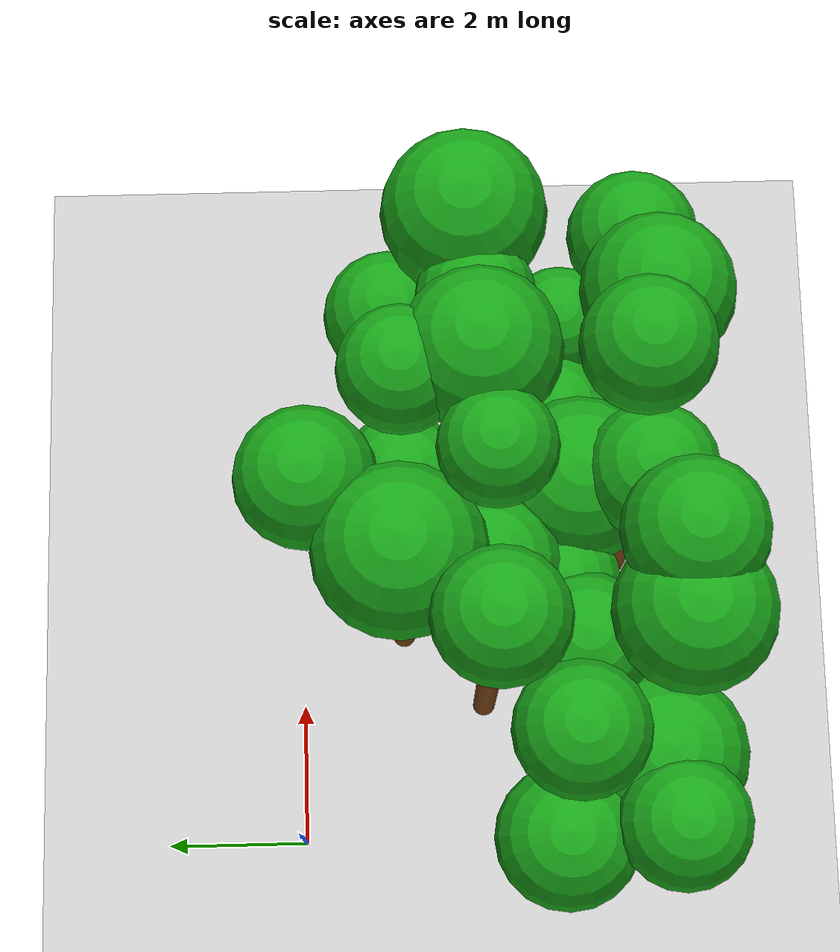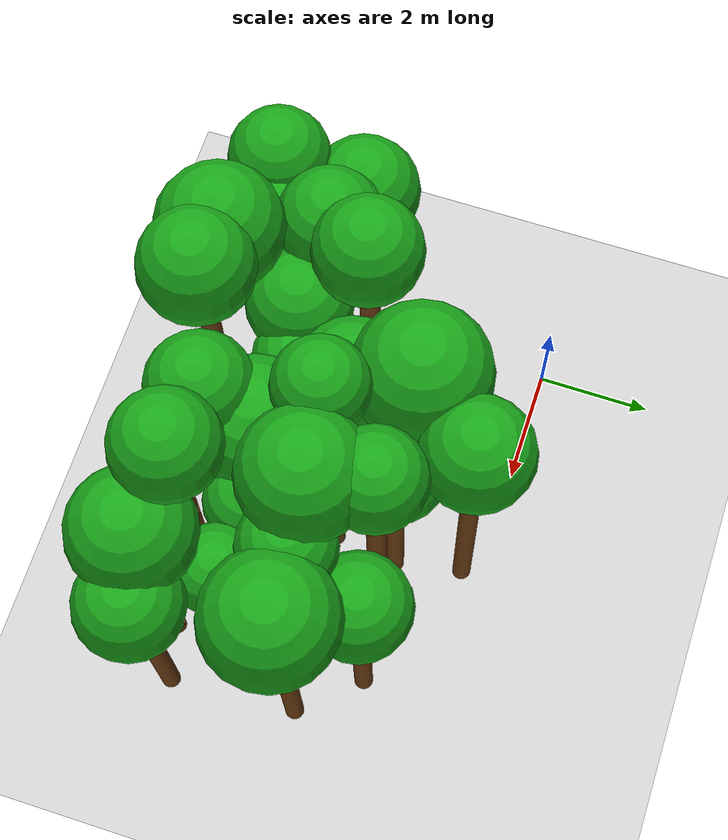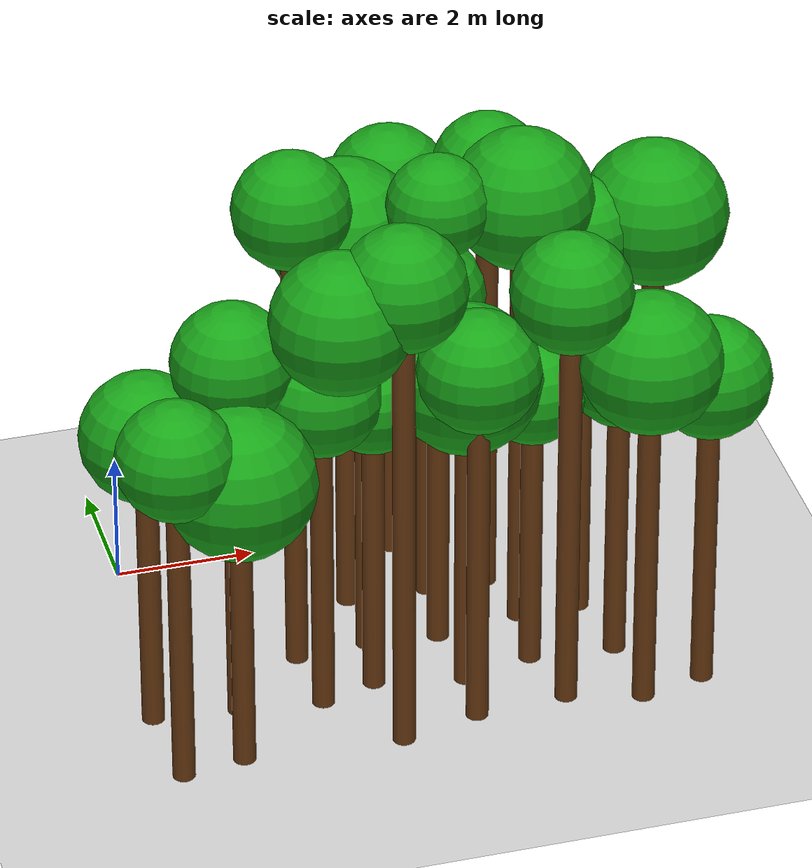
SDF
<sdf version="1.6">
 <world name="forest_world">
  <include><uri>model://sun</uri></include>
  <include><uri>model://ground_plane</uri></include>
  <model name="tree_1500_trunk">
   <static>true</static>
   <pose>-0.22 -4.87 2.38 0 0 0</pose>
   <link name="link">
    <collision name="collision">
     <geometry><cylinder><radius>0.16</radius><length>4.76</length></cylinder></geometry>
    </collision>
    <visual name="visual">
     <geometry><cylinder><radius>0.16</radius><length>4.76</length></cylinder></geometry>
     <material><ambient>0.35 0.20 0.05 1</ambient><diffuse>0.45 0.25 0.08 1</diffuse></material>
    </visual>
   </link>
  </model>
  <model name="tree_1500_leaf">
   <static>true</static>
   <pose>-0.22 -4.87 5.27 0 0 0</pose>
   <link name="link">
    <collision name="collision"><geometry><sphere><radius>0.84</radius></sphere></geometry></collision>
    <visual name="visual">
     <geometry><sphere><radius>0.84</radius></sphere></geometry>
     <material><ambient>0.05 0.45 0.05 1</ambient><diffuse>0.10 0.65 0.10 1</diffuse></material>
    </visual>
   </link>
  </model>
  <model name="tree_1501_trunk">
   <static>true</static>
   <pose>-0.32 -3.48 2.10 0 0 0</pose>
   <link name="link">
    <collision name="collision">
     <geometry><cylinder><radius>0.16</radius><length>4.21</length></cylinder></geometry>
    </collision>
    <visual name="visual">
     <geometry><cylinder><radius>0.16</radius><length>4.21</length></cylinder></geometry>
     <material><ambient>0.35 0.20 0.05 1</ambient><diffuse>0.45 0.25 0.08 1</diffuse></material>
    </visual>
   </link>
  </model>
  <model name="tree_1501_leaf">
   <static>true</static>
   <pose>-0.32 -3.48 4.76 0 0 0</pose>
   <link name="link">
    <collision name="collision"><geometry><sphere><radius>0.92</radius></sphere></geometry></collision>
    <visual name="visual">
     <geometry><sphere><radius>0.92</radius></sphere></geometry>
     <material><ambient>0.05 0.45 0.05 1</ambient><diffuse>0.10 0.65 0.10 1</diffuse></material>
    </visual>
   </link>
  </model>
  <model name="tree_1549_trunk">
   <static>true</static>
   <pose>0.68 -4.72 2.00 0 0 0</pose>
   <link name="link">
    <collision name="collision">
     <geometry><cylinder><radius>0.16</radius><length>4.01</length></cylinder></geometry>
    </collision>
    <visual name="visual">
     <geometry><cylinder><radius>0.16</radius><length>4.01</length></cylinder></geometry>
     <material><ambient>0.35 0.20 0.05 1</ambient><diffuse>0.45 0.25 0.08 1</diffuse></material>
    </visual>
   </link>
  </model>
  <model name="tree_1549_leaf">
   <static>true</static>
   <pose>0.68 -4.72 4.65 0 0 0</pose>
   <link name="link">
    <collision name="collision"><geometry><sphere><radius>1.08</radius></sphere></geometry></collision>
    <visual name="visual">
     <geometry><sphere><radius>1.08</radius></sphere></geometry>
     <material><ambient>0.05 0.45 0.05 1</ambient><diffuse>0.10 0.65 0.10 1</diffuse></material>
    </visual>
   </link>
  </model>
  <model name="tree_1550_trunk">
   <static>true</static>
   <pose>0.88 -3.62 2.66 0 0 0</pose>
   <link name="link">
    <collision name="collision">
     <geometry><cylinder><radius>0.16</radius><length>5.31</length></cylinder></geometry>
    </collision>
    <visual name="visual">
     <geometry><cylinder><radius>0.16</radius><length>5.31</length></cylinder></geometry>
     <material><ambient>0.35 0.20 0.05 1</ambient><diffuse>0.45 0.25 0.08 1</diffuse></material>
    </visual>
   </link>
  </model>
  <model name="tree_1550_leaf">
   <static>true</static>
   <pose>0.88 -3.62 5.83 0 0 0</pose>
   <link name="link">
    <collision name="collision"><geometry><sphere><radius>0.86</radius></sphere></geometry></collision>
    <visual name="visual">
     <geometry><sphere><radius>0.86</radius></sphere></geometry>
     <material><ambient>0.05 0.45 0.05 1</ambient><diffuse>0.10 0.65 0.10 1</diffuse></material>
    </visual>
   </link>
  </model>
  <model name="tree_1599_leaf">
   <static>true</static>
   <pose>2.07 -4.88 7.07 0 0 0</pose>
   <link name="link">
    <collision name="collision"><geometry><sphere><radius>0.98</radius></sphere></geometry></collision>
    <visual name="visual">
     <geometry><sphere><radius>0.98</radius></sphere></geometry>
     <material><ambient>0.05 0.45 0.05 1</ambient><diffuse>0.10 0.65 0.10 1</diffuse></material>
    </visual>
   </link>
  </model>
  <model name="tree_1600_trunk">
   <static>true</static>
   <pose>2.07 -3.75 2.33 0 0 0</pose>
   <link name="link">
    <collision name="collision">
     <geometry><cylinder><radius>0.16</radius><length>4.66</length></cylinder></geometry>
    </collision>
    <visual name="visual">
     <geometry><cylinder><radius>0.16</radius><length>4.66</length></cylinder></geometry>
     <material><ambient>0.35 0.20 0.05 1</ambient><diffuse>0.45 0.25 0.08 1</diffuse></material>
    </visual>
   </link>
  </model>
  <model name="tree_1600_leaf">
   <static>true</static>
   <pose>2.07 -3.75 5.18 0 0 0</pose>
   <link name="link">
    <collision name="collision"><geometry><sphere><radius>0.86</radius></sphere></geometry></collision>
    <visual name="visual">
     <geometry><sphere><radius>0.86</radius></sphere></geometry>
     <material><ambient>0.05 0.45 0.05 1</ambient><diffuse>0.10 0.65 0.10 1</diffuse></material>
    </visual>
   </link>
  </model>
  <model name="tree_1601_trunk">
   <static>true</static>
   <pose>1.98 -2.63 3.49 0 0 0</pose>
   <link name="link">
    <collision name="collision">
     <geometry><cylinder><radius>0.16</radius><length>6.99</length></cylinder></geometry>
    </collision>
    <visual name="visual">
     <geometry><cylinder><radius>0.16</radius><length>6.99</length></cylinder></geometry>
     <material><ambient>0.35 0.20 0.05 1</ambient><diffuse>0.45 0.25 0.08 1</diffuse></material>
    </visual>
   </link>
  </model>
  <model name="tree_1601_leaf">
   <static>true</static>
   <pose>1.98 -2.63 7.48 0 0 0</pose>
   <link name="link">
    <collision name="collision"><geometry><sphere><radius>0.83</radius></sphere></geometry></collision>
    <visual name="visual">
     <geometry><sphere><radius>0.83</radius></sphere></geometry>
     <material><ambient>0.05 0.45 0.05 1</ambient><diffuse>0.10 0.65 0.10 1</diffuse></material>
    </visual>
   </link>
  </model>
  <model name="tree_1650_trunk">
   <static>true</static>
   <pose>2.93 -4.88 3.46 0 0 0</pose>
   <link name="link">
    <collision name="collision">
     <geometry><cylinder><radius>0.16</radius><length>6.93</length></cylinder></geometry>
    </collision>
    <visual name="visual">
     <geometry><cylinder><radius>0.16</radius><length>6.93</length></cylinder></geometry>
     <material><ambient>0.35 0.20 0.05 1</ambient><diffuse>0.45 0.25 0.08 1</diffuse></material>
    </visual>
   </link>
  </model>
  <model name="tree_1650_leaf">
   <static>true</static>
   <pose>2.93 -4.88 7.46 0 0 0</pose>
   <link name="link">
    <collision name="collision"><geometry><sphere><radius>0.88</radius></sphere></geometry></collision>
    <visual name="visual">
     <geometry><sphere><radius>0.88</radius></sphere></geometry>
     <material><ambient>0.05 0.45 0.05 1</ambient><diffuse>0.10 0.65 0.10 1</diffuse></material>
    </visual>
   </link>
  </model>
  <model name="tree_1651_trunk">
   <static>true</static>
   <pose>2.87 -3.50 2.18 0 0 0</pose>
   <link name="link">
    <collision name="collision">
     <geometry><cylinder><radius>0.16</radius><length>4.36</length></cylinder></geometry>
    </collision>
    <visual name="visual">
     <geometry><cylinder><radius>0.16</radius><length>4.36</length></cylinder></geometry>
     <material><ambient>0.35 0.20 0.05 1</ambient><diffuse>0.45 0.25 0.08 1</diffuse></material>
    </visual>
   </link>
  </model>
  <model name="tree_1651_leaf">
   <static>true</static>
   <pose>2.87 -3.50 4.82 0 0 0</pose>
   <link name="link">
    <collision name="collision"><geometry><sphere><radius>0.77</radius></sphere></geometry></collision>
    <visual name="visual">
     <geometry><sphere><radius>0.77</radius></sphere></geometry>
     <material><ambient>0.05 0.45 0.05 1</ambient><diffuse>0.10 0.65 0.10 1</diffuse></material>
    </visual>
   </link>
  </model>
  <model name="tree_1652_trunk">
   <static>true</static>
   <pose>3.02 -2.57 2.35 0 0 0</pose>
   <link name="link">
    <collision name="collision">
     <geometry><cylinder><radius>0.16</radius><length>4.70</length></cylinder></geometry>
    </collision>
    <visual name="visual">
     <geometry><cylinder><radius>0.16</radius><length>4.70</length></cylinder></geometry>
     <material><ambient>0.35 0.20 0.05 1</ambient><diffuse>0.45 0.25 0.08 1</diffuse></material>
    </visual>
   </link>
  </model>
  <model name="tree_1652_leaf">
   <static>true</static>
   <pose>3.02 -2.57 5.26 0 0 0</pose>
   <link name="link">
    <collision name="collision"><geometry><sphere><radius>0.93</radius></sphere></geometry></collision>
    <visual name="visual">
     <geometry><sphere><radius>0.93</radius></sphere></geometry>
     <material><ambient>0.05 0.45 0.05 1</ambient><diffuse>0.10 0.65 0.10 1</diffuse></material>
    </visual>
   </link>
  </model>
  <model name="tree_1653_trunk">
   <static>true</static>
   <pose>3.03 -1.48 2.78 0 0 0</pose>
   <link name="link">
    <collision name="collision">
     <geometry><cylinder><radius>0.16</radius><length>5.56</length></cylinder></geometry>
    </collision>
    <visual name="visual">
     <geometry><cylinder><radius>0.16</radius><length>5.56</length></cylinder></geometry>
     <material><ambient>0.35 0.20 0.05 1</ambient><diffuse>0.45 0.25 0.08 1</diffuse></material>
    </visual>
   </link>
  </model>
  <model name="tree_1653_leaf">
   <static>true</static>
   <pose>3.03 -1.48 6.21 0 0 0</pose>
   <link name="link">
    <collision name="collision"><geometry><sphere><radius>1.09</radius></sphere></geometry></collision>
    <visual name="visual">
     <geometry><sphere><radius>1.09</radius></sphere></geometry>
     <material><ambient>0.05 0.45 0.05 1</ambient><diffuse>0.10 0.65 0.10 1</diffuse></material>
    </visual>
   </link>
  </model>
  <model name="tree_1705_trunk">
   <static>true</static>
   <pose>4.06 -4.61 2.63 0 0 0</pose>
   <link name="link">
    <collision name="collision">
     <geometry><cylinder><radius>0.16</radius><length>5.26</length></cylinder></geometry>
    </collision>
    <visual name="visual">
     <geometry><cylinder><radius>0.16</radius><length>5.26</length></cylinder></geometry>
     <material><ambient>0.35 0.20 0.05 1</ambient><diffuse>0.45 0.25 0.08 1</diffuse></material>
    </visual>
   </link>
  </model>
  <model name="tree_1705_leaf">
   <static>true</static>
   <pose>4.06 -4.61 5.77 0 0 0</pose>
   <link name="link">
    <collision name="collision"><geometry><sphere><radius>0.86</radius></sphere></geometry></collision>
    <visual name="visual">
     <geometry><sphere><radius>0.86</radius></sphere></geometry>
     <material><ambient>0.05 0.45 0.05 1</ambient><diffuse>0.10 0.65 0.10 1</diffuse></material>
    </visual>
   </link>
  </model>
  <model name="tree_1706_trunk">
   <static>true</static>
   <pose>4.13 -3.76 2.23 0 0 0</pose>
   <link name="link">
    <collision name="collision">
     <geometry><cylinder><radius>0.16</radius><length>4.45</length></cylinder></geometry>
    </collision>
    <visual name="visual">
     <geometry><cylinder><radius>0.16</radius><length>4.45</length></cylinder></geometry>
     <material><ambient>0.35 0.20 0.05 1</ambient><diffuse>0.45 0.25 0.08 1</diffuse></material>
    </visual>
   </link>
  </model>
  <model name="tree_1706_leaf">
   <static>true</static>
   <pose>4.13 -3.76 5.09 0 0 0</pose>
   <link name="link">
    <collision name="collision"><geometry><sphere><radius>1.06</radius></sphere></geometry></collision>
    <visual name="visual">
     <geometry><sphere><radius>1.06</radius></sphere></geometry>
     <material><ambient>0.05 0.45 0.05 1</ambient><diffuse>0.10 0.65 0.10 1</diffuse></material>
    </visual>
   </link>
  </model>
  <model name="tree_1707_trunk">
   <static>true</static>
   <pose>4.04 -2.66 3.39 0 0 0</pose>
   <link name="link">
    <collision name="collision">
     <geometry><cylinder><radius>0.16</radius><length>6.78</length></cylinder></geometry>
    </collision>
    <visual name="visual">
     <geometry><cylinder><radius>0.16</radius><length>6.78</length></cylinder></geometry>
     <material><ambient>0.35 0.20 0.05 1</ambient><diffuse>0.45 0.25 0.08 1</diffuse></material>
    </visual>
   </link>
  </model>
  <model name="tree_1707_leaf">
   <static>true</static>
   <pose>4.04 -2.66 7.22 0 0 0</pose>
   <link name="link">
    <collision name="collision"><geometry><sphere><radius>0.73</radius></sphere></geometry></collision>
    <visual name="visual">
     <geometry><sphere><radius>0.73</radius></sphere></geometry>
     <material><ambient>0.05 0.45 0.05 1</ambient><diffuse>0.10 0.65 0.10 1</diffuse></material>
    </visual>
   </link>
  </model>
  <model name="tree_1708_trunk">
   <static>true</static>
   <pose>4.19 -1.52 2.28 0 0 0</pose>
   <link name="link">
    <collision name="collision">
     <geometry><cylinder><radius>0.16</radius><length>4.56</length></cylinder></geometry>
    </collision>
    <visual name="visual">
     <geometry><cylinder><radius>0.16</radius><length>4.56</length></cylinder></geometry>
     <material><ambient>0.35 0.20 0.05 1</ambient><diffuse>0.45 0.25 0.08 1</diffuse></material>
    </visual>
   </link>
  </model>
  <model name="tree_1708_leaf">
   <static>true</static>
   <pose>4.19 -1.52 5.06 0 0 0</pose>
   <link name="link">
    <collision name="collision"><geometry><sphere><radius>0.84</radius></sphere></geometry></collision>
    <visual name="visual">
     <geometry><sphere><radius>0.84</radius></sphere></geometry>
     <material><ambient>0.05 0.45 0.05 1</ambient><diffuse>0.10 0.65 0.10 1</diffuse></material>
    </visual>
   </link>
  </model>
  <model name="tree_1709_trunk">
   <static>true</static>
   <pose>3.97 -0.35 2.81 0 0 0</pose>
   <link name="link">
    <collision name="collision">
     <geometry><cylinder><radius>0.16</radius><length>5.62</length></cylinder></geometry>
    </collision>
    <visual name="visual">
     <geometry><cylinder><radius>0.16</radius><length>5.62</length></cylinder></geometry>
     <material><ambient>0.35 0.20 0.05 1</ambient><diffuse>0.45 0.25 0.08 1</diffuse></material>
    </visual>
   </link>
  </model>
  <model name="tree_1709_leaf">
   <static>true</static>
   <pose>3.97 -0.35 6.16 0 0 0</pose>
   <link name="link">
    <collision name="collision"><geometry><sphere><radius>0.89</radius></sphere></geometry></collision>
    <visual name="visual">
     <geometry><sphere><radius>0.89</radius></sphere></geometry>
     <material><ambient>0.05 0.45 0.05 1</ambient><diffuse>0.10 0.65 0.10 1</diffuse></material>
    </visual>
   </link>
  </model>
  <model name="tree_1760_trunk">
   <static>true</static>
   <pose>5.38 -4.53 3.12 0 0 0</pose>
   <link name="link">
    <collision name="collision">
     <geometry><cylinder><radius>0.16</radius><length>6.24</length></cylinder></geometry>
    </collision>
    <visual name="visual">
     <geometry><cylinder><radius>0.16</radius><length>6.24</length></cylinder></geometry>
     <material><ambient>0.35 0.20 0.05 1</ambient><diffuse>0.45 0.25 0.08 1</diffuse></material>
    </visual>
   </link>
  </model>
  <model name="tree_1760_leaf">
   <static>true</static>
   <pose>5.38 -4.53 6.75 0 0 0</pose>
   <link name="link">
    <collision name="collision"><geometry><sphere><radius>0.85</radius></sphere></geometry></collision>
    <visual name="visual">
     <geometry><sphere><radius>0.85</radius></sphere></geometry>
     <material><ambient>0.05 0.45 0.05 1</ambient><diffuse>0.10 0.65 0.10 1</diffuse></material>
    </visual>
   </link>
  </model>
  <model name="tree_1761_trunk">
   <static>true</static>
   <pose>5.15 -3.51 2.05 0 0 0</pose>
   <link name="link">
    <collision name="collision">
     <geometry><cylinder><radius>0.16</radius><length>4.09</length></cylinder></geometry>
    </collision>
    <visual name="visual">
     <geometry><cylinder><radius>0.16</radius><length>4.09</length></cylinder></geometry>
     <material><ambient>0.35 0.20 0.05 1</ambient><diffuse>0.45 0.25 0.08 1</diffuse></material>
    </visual>
   </link>
  </model>
  <model name="tree_1761_leaf">
   <static>true</static>
   <pose>5.15 -3.51 4.55 0 0 0</pose>
   <link name="link">
    <collision name="collision"><geometry><sphere><radius>0.76</radius></sphere></geometry></collision>
    <visual name="visual">
     <geometry><sphere><radius>0.76</radius></sphere></geometry>
     <material><ambient>0.05 0.45 0.05 1</ambient><diffuse>0.10 0.65 0.10 1</diffuse></material>
    </visual>
   </link>
  </model>
  <model name="tree_1762_trunk">
   <static>true</static>
   <pose>5.28 -2.49 3.21 0 0 0</pose>
   <link name="link">
    <collision name="collision">
     <geometry><cylinder><radius>0.16</radius><length>6.43</length></cylinder></geometry>
    </collision>
    <visual name="visual">
     <geometry><cylinder><radius>0.16</radius><length>6.43</length></cylinder></geometry>
     <material><ambient>0.35 0.20 0.05 1</ambient><diffuse>0.45 0.25 0.08 1</diffuse></material>
    </visual>
   </link>
  </model>
  <model name="tree_1762_leaf">
   <static>true</static>
   <pose>5.28 -2.49 7.03 0 0 0</pose>
   <link name="link">
    <collision name="collision"><geometry><sphere><radius>1.00</radius></sphere></geometry></collision>
    <visual name="visual">
     <geometry><sphere><radius>1.00</radius></sphere></geometry>
     <material><ambient>0.05 0.45 0.05 1</ambient><diffuse>0.10 0.65 0.10 1</diffuse></material>
    </visual>
   </link>
  </model>
  <model name="tree_1763_trunk">
   <static>true</static>
   <pose>5.06 -1.54 3.27 0 0 0</pose>
   <link name="link">
    <collision name="collision">
     <geometry><cylinder><radius>0.16</radius><length>6.54</length></cylinder></geometry>
    </collision>
    <visual name="visual">
     <geometry><cylinder><radius>0.16</radius><length>6.54</length></cylinder></geometry>
     <material><ambient>0.35 0.20 0.05 1</ambient><diffuse>0.45 0.25 0.08 1</diffuse></material>
    </visual>
   </link>
  </model>
  <model name="tree_1763_leaf">
   <static>true</static>
   <pose>5.06 -1.54 7.01 0 0 0</pose>
   <link name="link">
    <collision name="collision"><geometry><sphere><radius>0.78</radius></sphere></geometry></collision>
    <visual name="visual">
     <geometry><sphere><radius>0.78</radius></sphere></geometry>
     <material><ambient>0.05 0.45 0.05 1</ambient><diffuse>0.10 0.65 0.10 1</diffuse></material>
    </visual>
   </link>
  </model>
  <model name="tree_1815_trunk">
   <static>true</static>
   <pose>6.43 -4.81 2.51 0 0 0</pose>
   <link name="link">
    <collision name="collision">
     <geometry><cylinder><radius>0.16</radius><length>5.02</length></cylinder></geometry>
    </collision>
    <visual name="visual">
     <geometry><cylinder><radius>0.16</radius><length>5.02</length></cylinder></geometry>
     <material><ambient>0.35 0.20 0.05 1</ambient><diffuse>0.45 0.25 0.08 1</diffuse></material>
    </visual>
   </link>
  </model>
  <model name="tree_1815_leaf">
   <static>true</static>
   <pose>6.43 -4.81 5.62 0 0 0</pose>
   <link name="link">
    <collision name="collision"><geometry><sphere><radius>1.00</radius></sphere></geometry></collision>
    <visual name="visual">
     <geometry><sphere><radius>1.00</radius></sphere></geometry>
     <material><ambient>0.05 0.45 0.05 1</ambient><diffuse>0.10 0.65 0.10 1</diffuse></material>
    </visual>
   </link>
  </model>
  <model name="tree_1816_trunk">
   <static>true</static>
   <pose>6.37 -3.61 2.10 0 0 0</pose>
   <link name="link">
    <collision name="collision">
     <geometry><cylinder><radius>0.16</radius><length>4.20</length></cylinder></geometry>
    </collision>
    <visual name="visual">
     <geometry><cylinder><radius>0.16</radius><length>4.20</length></cylinder></geometry>
     <material><ambient>0.35 0.20 0.05 1</ambient><diffuse>0.45 0.25 0.08 1</diffuse></material>
    </visual>
   </link>
  </model>
  <model name="tree_1816_leaf">
   <static>true</static>
   <pose>6.37 -3.61 4.64 0 0 0</pose>
   <link name="link">
    <collision name="collision"><geometry><sphere><radius>0.72</radius></sphere></geometry></collision>
    <visual name="visual">
     <geometry><sphere><radius>0.72</radius></sphere></geometry>
     <material><ambient>0.05 0.45 0.05 1</ambient><diffuse>0.10 0.65 0.10 1</diffuse></material>
    </visual>
   </link>
  </model>
  <model name="tree_1817_trunk">
   <static>true</static>
   <pose>6.17 -2.48 2.96 0 0 0</pose>
   <link name="link">
    <collision name="collision">
     <geometry><cylinder><radius>0.16</radius><length>5.92</length></cylinder></geometry>
    </collision>
    <visual name="visual">
     <geometry><cylinder><radius>0.16</radius><length>5.92</length></cylinder></geometry>
     <material><ambient>0.35 0.20 0.05 1</ambient><diffuse>0.45 0.25 0.08 1</diffuse></material>
    </visual>
   </link>
  </model>
  <model name="tree_1817_leaf">
   <static>true</static>
   <pose>6.17 -2.48 6.37 0 0 0</pose>
   <link name="link">
    <collision name="collision"><geometry><sphere><radius>0.75</radius></sphere></geometry></collision>
    <visual name="visual">
     <geometry><sphere><radius>0.75</radius></sphere></geometry>
     <material><ambient>0.05 0.45 0.05 1</ambient><diffuse>0.10 0.65 0.10 1</diffuse></material>
    </visual>
   </link>
  </model>
  <model name="tree_1818_trunk">
   <static>true</static>
   <pose>6.37 -1.39 2.26 0 0 0</pose>
   <link name="link">
    <collision name="collision">
     <geometry><cylinder><radius>0.16</radius><length>4.52</length></cylinder></geometry>
    </collision>
    <visual name="visual">
     <geometry><cylinder><radius>0.16</radius><length>4.52</length></cylinder></geometry>
     <material><ambient>0.35 0.20 0.05 1</ambient><diffuse>0.45 0.25 0.08 1</diffuse></material>
    </visual>
   </link>
  </model>
  <model name="tree_1818_leaf">
   <static>true</static>
   <pose>6.37 -1.39 5.03 0 0 0</pose>
   <link name="link">
    <collision name="collision"><geometry><sphere><radius>0.84</radius></sphere></geometry></collision>
    <visual name="visual">
     <geometry><sphere><radius>0.84</radius></sphere></geometry>
     <material><ambient>0.05 0.45 0.05 1</ambient><diffuse>0.10 0.65 0.10 1</diffuse></material>
    </visual>
   </link>
  </model>
  <model name="tree_1870_trunk">
   <static>true</static>
   <pose>7.36 -4.58 2.27 0 0 0</pose>
   <link name="link">
    <collision name="collision">
     <geometry><cylinder><radius>0.16</radius><length>4.55</length></cylinder></geometry>
    </collision>
    <visual name="visual">
     <geometry><cylinder><radius>0.16</radius><length>4.55</length></cylinder></geometry>
     <material><ambient>0.35 0.20 0.05 1</ambient><diffuse>0.45 0.25 0.08 1</diffuse></material>
    </visual>
   </link>
  </model>
  <model name="tree_1870_leaf">
   <static>true</static>
   <pose>7.36 -4.58 5.06 0 0 0</pose>
   <link name="link">
    <collision name="collision"><geometry><sphere><radius>0.86</radius></sphere></geometry></collision>
    <visual name="visual">
     <geometry><sphere><radius>0.86</radius></sphere></geometry>
     <material><ambient>0.05 0.45 0.05 1</ambient><diffuse>0.10 0.65 0.10 1</diffuse></material>
    </visual>
   </link>
  </model>
  <model name="tree_1872_trunk">
   <static>true</static>
   <pose>7.23 -2.36 2.89 0 0 0</pose>
   <link name="link">
    <collision name="collision">
     <geometry><cylinder><radius>0.16</radius><length>5.77</length></cylinder></geometry>
    </collision>
    <visual name="visual">
     <geometry><cylinder><radius>0.16</radius><length>5.77</length></cylinder></geometry>
     <material><ambient>0.35 0.20 0.05 1</ambient><diffuse>0.45 0.25 0.08 1</diffuse></material>
    </visual>
   </link>
  </model>
  <model name="tree_1872_leaf">
   <static>true</static>
   <pose>7.23 -2.36 6.40 0 0 0</pose>
   <link name="link">
    <collision name="collision"><geometry><sphere><radius>1.04</radius></sphere></geometry></collision>
    <visual name="visual">
     <geometry><sphere><radius>1.04</radius></sphere></geometry>
     <material><ambient>0.05 0.45 0.05 1</ambient><diffuse>0.10 0.65 0.10 1</diffuse></material>
    </visual>
   </link>
  </model>
 </world>
</sdf>
